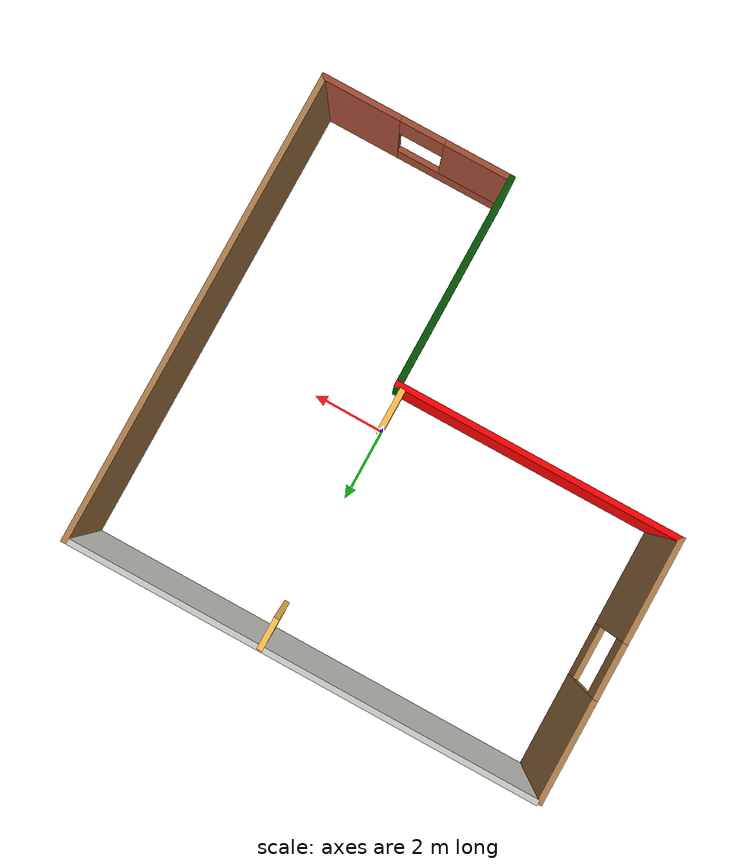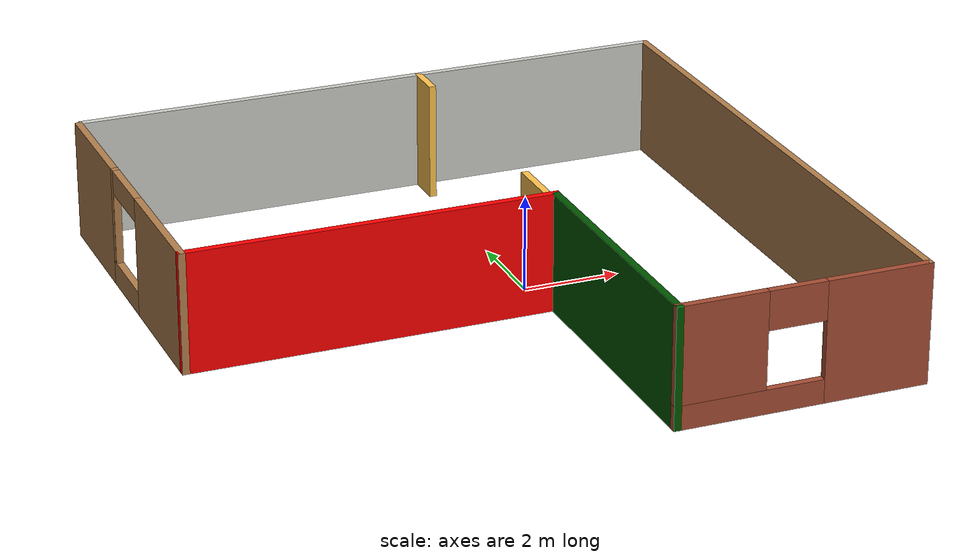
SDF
<?xml version='1.0'?>
<sdf version='1.6'>
  <model name='simple_house'>
    <pose frame=''>-1.06448 -0.388536 0 0 -0 0</pose>
    <link name='Wall_0'>
      <collision name='Wall_0_Collision'>
        <geometry>
          <box>
            <size>12.75 0.15 2.5</size>
          </box>
        </geometry>
        <pose frame=''>0 0 1.25 0 -0 0</pose>
      </collision>
      <visual name='Wall_0_Visual'>
        <pose frame=''>0 0 1.25 0 -0 0</pose>
        <geometry>
          <box>
            <size>12.75 0.15 2.5</size>
          </box>
        </geometry>
        <material>
          <script>
            <uri>file://media/materials/scripts/gazebo.material</uri>
            <name>Gazebo/CeilingTiled</name>
          </script>
          <ambient>1 1 1 1</ambient>
        </material>
      </visual>
      <pose frame=''>0.05 6.3 0 0 -0 0</pose>
    </link>
    <link name='Wall_1'>
      <collision name='Wall_1_Collision'>
        <geometry>
          <box>
            <size>12.75 0.15 2.5</size>
          </box>
        </geometry>
        <pose frame=''>0 0 1.25 0 -0 0</pose>
      </collision>
      <visual name='Wall_1_Visual'>
        <pose frame=''>0 0 1.25 0 -0 0</pose>
        <geometry>
          <box>
            <size>12.75 0.15 2.5</size>
          </box>
        </geometry>
        <material>
          <script>
            <uri>file://media/materials/scripts/gazebo.material</uri>
            <name>Gazebo/Wood</name>
          </script>
          <ambient>1 1 1 1</ambient>
        </material>
      </visual>
      <pose frame=''>6.35 0 0 0 0 -1.5708</pose>
    </link>
    <link name='Wall_2'>
      <pose frame=''>3.8 -6.3 0 0 -0 3.14159</pose>
      <visual name='Wall_2_Visual_0'>
        <pose frame=''>-1.53314 0 1.25 0 -0 0</pose>
        <geometry>
          <box>
            <size>2.18372 0.15 2.5</size>
          </box>
        </geometry>
        <material>
          <script>
            <uri>file://media/materials/scripts/gazebo.material</uri>
            <name>Gazebo/Bricks</name>
          </script>
          <ambient>1 1 1 1</ambient>
        </material>
      </visual>
      <collision name='Wall_2_Collision_0'>
        <geometry>
          <box>
            <size>2.18372 0.15 2.5</size>
          </box>
        </geometry>
        <pose frame=''>-1.53314 0 1.25 0 -0 0</pose>
      </collision>
      <visual name='Wall_2_Visual_1'>
        <pose frame=''>1.09186 0 0.25 0 -0 0</pose>
        <geometry>
          <box>
            <size>3.06628 0.15 0.5</size>
          </box>
        </geometry>
        <material>
          <script>
            <uri>file://media/materials/scripts/gazebo.material</uri>
            <name>Gazebo/Bricks</name>
          </script>
          <ambient>1 1 1 1</ambient>
        </material>
      </visual>
      <collision name='Wall_2_Collision_1'>
        <geometry>
          <box>
            <size>3.06628 0.15 0.5</size>
          </box>
        </geometry>
        <pose frame=''>1.09186 0 0.25 0 -0 0</pose>
      </collision>
      <visual name='Wall_2_Visual_2'>
        <pose frame=''>1.69186 0 1.5 0 -0 0</pose>
        <geometry>
          <box>
            <size>1.86628 0.15 2</size>
          </box>
        </geometry>
        <material>
          <script>
            <uri>file://media/materials/scripts/gazebo.material</uri>
            <name>Gazebo/Bricks</name>
          </script>
          <ambient>1 1 1 1</ambient>
        </material>
      </visual>
      <collision name='Wall_2_Collision_2'>
        <geometry>
          <box>
            <size>1.86628 0.15 2</size>
          </box>
        </geometry>
        <pose frame=''>1.69186 0 1.5 0 -0 0</pose>
      </collision>
      <visual name='Wall_2_Visual_3'>
        <pose frame=''>0.158717 0 2.1 0 -0 0</pose>
        <geometry>
          <box>
            <size>1.2 0.15 0.8</size>
          </box>
        </geometry>
        <material>
          <script>
            <uri>file://media/materials/scripts/gazebo.material</uri>
            <name>Gazebo/Bricks</name>
          </script>
          <ambient>1 1 1 1</ambient>
        </material>
      </visual>
      <collision name='Wall_2_Collision_3'>
        <geometry>
          <box>
            <size>1.2 0.15 0.8</size>
          </box>
        </geometry>
        <pose frame=''>0.158717 0 2.1 0 -0 0</pose>
      </collision>
    </link>
    <link name='Wall_3'>
      <collision name='Wall_3_Collision'>
        <geometry>
          <box>
            <size>5.75 0.15 2.5</size>
          </box>
        </geometry>
        <pose frame=''>0 0 1.25 0 -0 0</pose>
      </collision>
      <visual name='Wall_3_Visual'>
        <pose frame=''>0 0 1.25 0 -0 0</pose>
        <geometry>
          <box>
            <size>5.75 0.15 2.5</size>
          </box>
        </geometry>
        <material>
          <script>
            <uri>file://media/materials/scripts/gazebo.material</uri>
            <name>Gazebo/Grey</name>
          </script>
          <ambient>0 0.333333 0 1</ambient>
        </material>
      </visual>
      <pose frame=''>1.25 -3.5 0 0 -0 1.5708</pose>
    </link>
    <link name='Wall_4'>
      <collision name='Wall_4_Collision'>
        <geometry>
          <box>
            <size>7.75 0.15 2.5</size>
          </box>
        </geometry>
        <pose frame=''>0 0 1.25 0 -0 0</pose>
      </collision>
      <visual name='Wall_4_Visual'>
        <pose frame=''>0 0 1.25 0 -0 0</pose>
        <geometry>
          <box>
            <size>7.75 0.15 2.5</size>
          </box>
        </geometry>
        <material>
          <script>
            <uri>file://media/materials/scripts/gazebo.material</uri>
            <name>Gazebo/Grey</name>
          </script>
          <ambient>1 0 0 1</ambient>
        </material>
      </visual>
      <pose frame=''>-2.55 -0.7 0 0 -0 3.14159</pose>
    </link>
    <link name='Wall_5'>
      <pose frame=''>-6.35 1.475 0 0 -0 1.5708</pose>
      <visual name='Wall_5_Visual_0'>
        <pose frame=''>-0.819987 0 1.25 0 -0 0</pose>
        <geometry>
          <box>
            <size>2.86003 0.15 2.5</size>
          </box>
        </geometry>
        <material>
          <script>
            <uri>file://media/materials/scripts/gazebo.material</uri>
            <name>Gazebo/Wood</name>
          </script>
          <ambient>1 1 1 1</ambient>
        </material>
      </visual>
      <collision name='Wall_5_Collision_0'>
        <geometry>
          <box>
            <size>2.86003 0.15 2.5</size>
          </box>
        </geometry>
        <pose frame=''>-0.819987 0 1.25 0 -0 0</pose>
      </collision>
      <visual name='Wall_5_Visual_1'>
        <pose frame=''>1.43001 0 0.25 0 -0 0</pose>
        <geometry>
          <box>
            <size>1.63997 0.15 0.5</size>
          </box>
        </geometry>
        <material>
          <script>
            <uri>file://media/materials/scripts/gazebo.material</uri>
            <name>Gazebo/Wood</name>
          </script>
          <ambient>1 1 1 1</ambient>
        </material>
      </visual>
      <collision name='Wall_5_Collision_1'>
        <geometry>
          <box>
            <size>1.63997 0.15 0.5</size>
          </box>
        </geometry>
        <pose frame=''>1.43001 0 0.25 0 -0 0</pose>
      </collision>
      <visual name='Wall_5_Visual_2'>
        <pose frame=''>2.18001 0 1.5 0 -0 0</pose>
        <geometry>
          <box>
            <size>0.139974 0.15 2</size>
          </box>
        </geometry>
        <material>
          <script>
            <uri>file://media/materials/scripts/gazebo.material</uri>
            <name>Gazebo/Wood</name>
          </script>
          <ambient>1 1 1 1</ambient>
        </material>
      </visual>
      <collision name='Wall_5_Collision_2'>
        <geometry>
          <box>
            <size>0.139974 0.15 2</size>
          </box>
        </geometry>
        <pose frame=''>2.18001 0 1.5 0 -0 0</pose>
      </collision>
      <visual name='Wall_5_Visual_3'>
        <pose frame=''>1.36003 0 2.25 0 -0 0</pose>
        <geometry>
          <box>
            <size>1.5 0.15 0.5</size>
          </box>
        </geometry>
        <material>
          <script>
            <uri>file://media/materials/scripts/gazebo.material</uri>
            <name>Gazebo/Wood</name>
          </script>
          <ambient>1 1 1 1</ambient>
        </material>
      </visual>
      <collision name='Wall_5_Collision_3'>
        <geometry>
          <box>
            <size>1.5 0.15 0.5</size>
          </box>
        </geometry>
        <pose frame=''>1.36003 0 2.25 0 -0 0</pose>
      </collision>
    </link>
    <link name='Wall_6'>
      <collision name='Wall_6_Collision'>
        <geometry>
          <box>
            <size>2.75 0.15 2.5</size>
          </box>
        </geometry>
        <pose frame=''>0 0 1.25 0 -0 0</pose>
      </collision>
      <visual name='Wall_6_Visual'>
        <pose frame=''>0 0 1.25 0 -0 0</pose>
        <geometry>
          <box>
            <size>2.75 0.15 2.5</size>
          </box>
        </geometry>
        <material>
          <script>
            <uri>file://media/materials/scripts/gazebo.material</uri>
            <name>Gazebo/Wood</name>
          </script>
          <ambient>1 1 1 1</ambient>
        </material>
      </visual>
      <pose frame=''>-6.35 4.95 0 0 -0 1.5708</pose>
    </link>
    <link name='Wall_8'>
      <pose frame=''>1.09258 2.84875 0 0 0 -1.5708</pose>
      <visual name='Wall_8_Visual_0'>
        <pose frame=''>-3.07405 0 1.25 0 -0 0</pose>
        <geometry>
          <box>
            <size>0.851902 0.15 2.5</size>
          </box>
        </geometry>
        <material>
          <script>
            <uri>file://media/materials/scripts/gazebo.material</uri>
            <name>Gazebo/Grey</name>
          </script>
          <ambient>1 0.764706 0.305882 1</ambient>
        </material>
      </visual>
      <collision name='Wall_8_Collision_0'>
        <geometry>
          <box>
            <size>0.851902 0.15 2.5</size>
          </box>
        </geometry>
        <pose frame=''>-3.07405 0 1.25 0 -0 0</pose>
      </collision>
      <visual name='Wall_8_Visual_1'>
        <pose frame=''>2.92595 0 1.25 0 -0 0</pose>
        <geometry>
          <box>
            <size>1.1481 0.15 2.5</size>
          </box>
        </geometry>
        <material>
          <script>
            <uri>file://media/materials/scripts/gazebo.material</uri>
            <name>Gazebo/Grey</name>
          </script>
          <ambient>1 0.764706 0.305882 1</ambient>
        </material>
      </visual>
      <collision name='Wall_8_Collision_1'>
        <geometry>
          <box>
            <size>1.1481 0.15 2.5</size>
          </box>
        </geometry>
        <pose frame=''>2.92595 0 1.25 0 -0 0</pose>
      </collision>
    </link>
    <static>1</static>
  </model>
</sdf>
